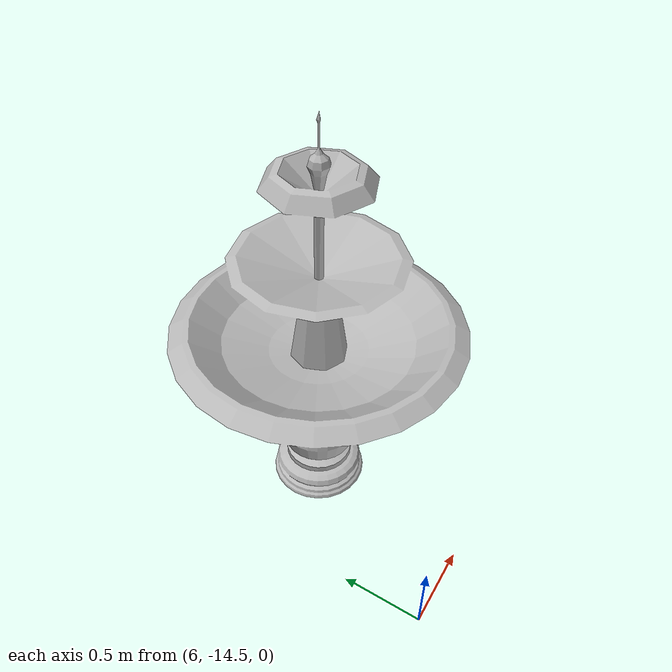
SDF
<?xml version='1.0'?>
<sdf version='1.6'>
  <model name='Fountain'>
    <model name='fountain'>
      <static>1</static>
      <link name='link'>
        <collision name='collision'>
          <geometry>
            <mesh>
              <uri>model://fountain/meshes/fountain.dae</uri>
            </mesh>
          </geometry>
        </collision>
        <visual name='visual'>
          <geometry>
            <mesh>
              <uri>model://fountain/meshes/fountain.dae</uri>
            </mesh>
          </geometry>
        </visual>
      </link>
      <pose frame=''>6.67705 -13.3894 0 0 -0 0</pose>
    </model>
    <static>0</static>
    <allow_auto_disable>1</allow_auto_disable>
  </model>
</sdf>
